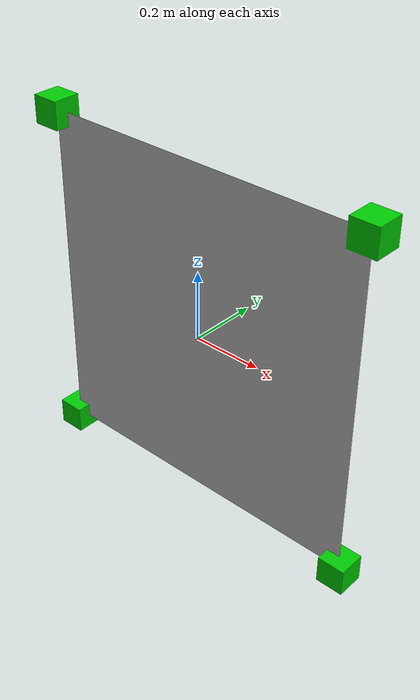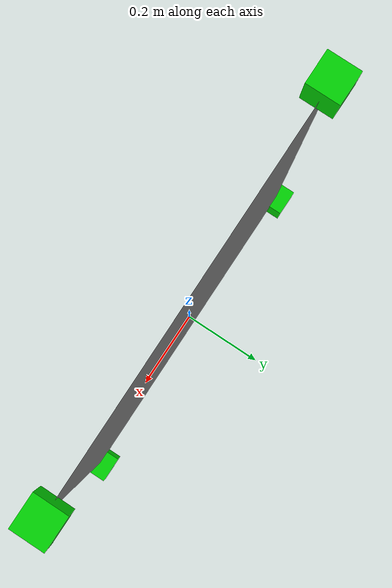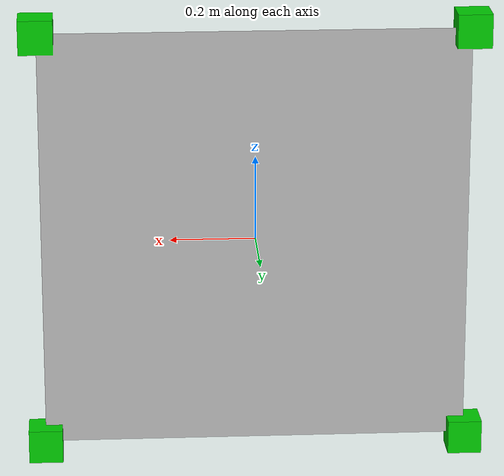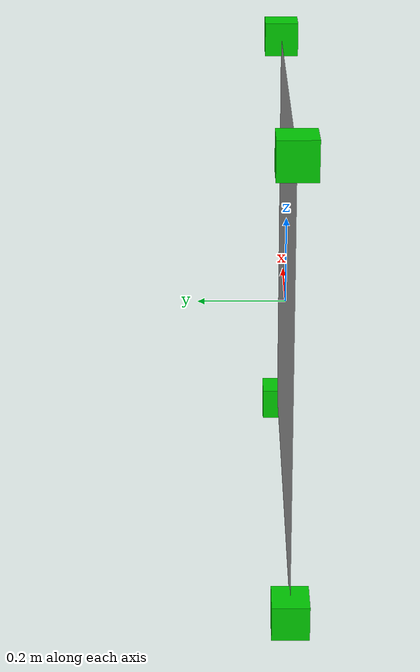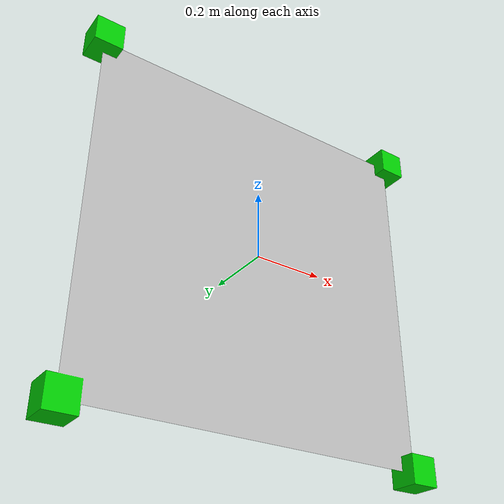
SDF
<?xml version="1.0" ?>
<sdf version='1.4'>
  <model name="label_corrosive">
      <static>0</static>
      <link name='link'>
        <visual name='visual'>
          <geometry>
            <mesh>
              <uri>model://label_radioactive/model.dae</uri>
            </mesh>
          </geometry>
          <material>
            <script>
              <uri>model://label_radioactive/model.dae</uri>
              <name></name>
            </script>
          </material>
        </visual>
        <velocity_decay>
          <linear>0.000000</linear>
          <angular>0.000000</angular>
        </velocity_decay>
        <self_collide>0</self_collide>
        <kinematic>0</kinematic>
        <gravity>0</gravity>
      </link>
  </model>
</sdf>
